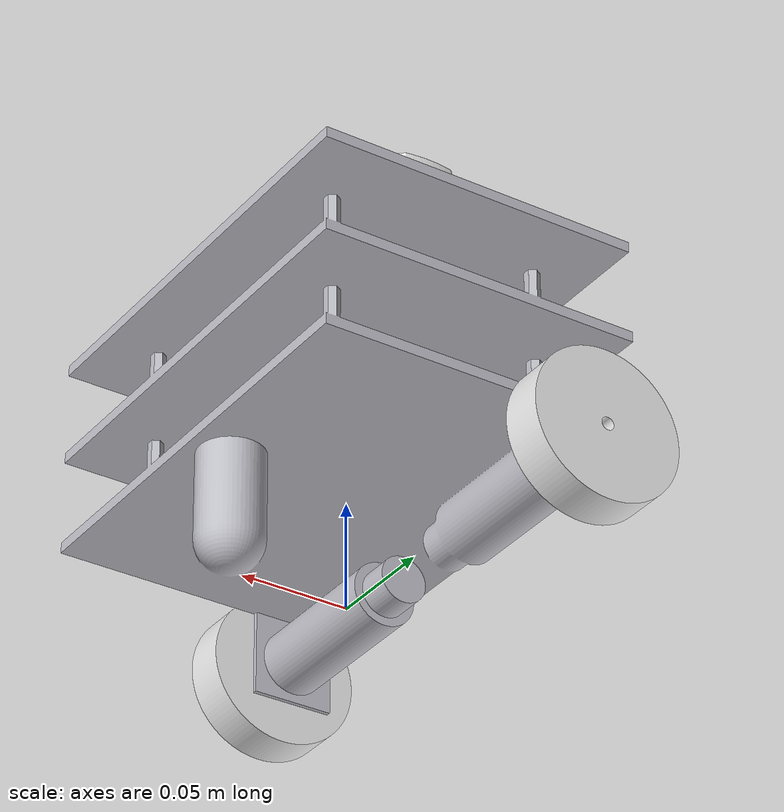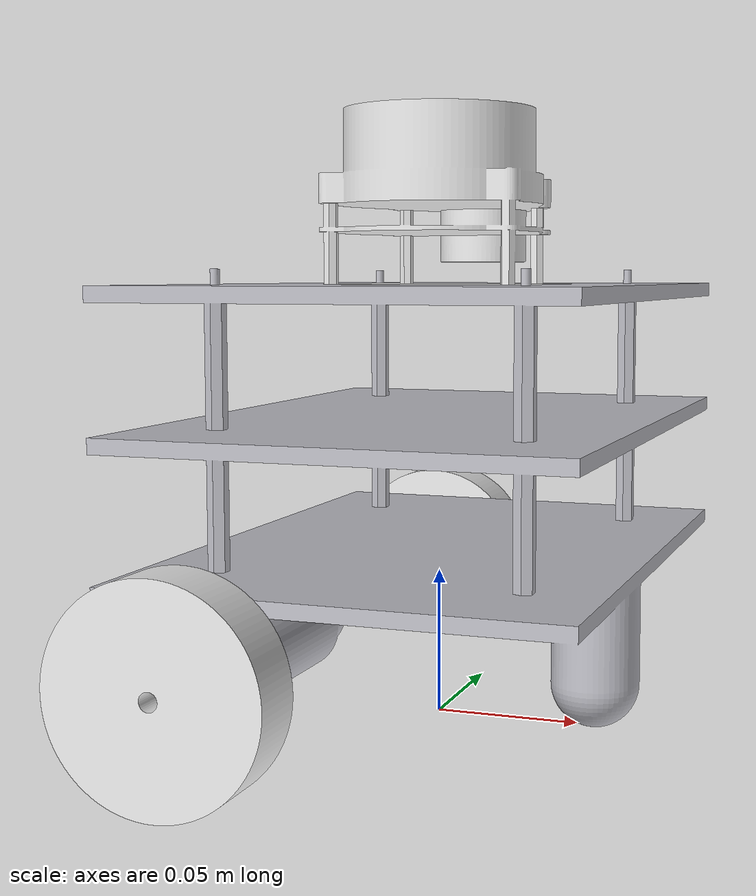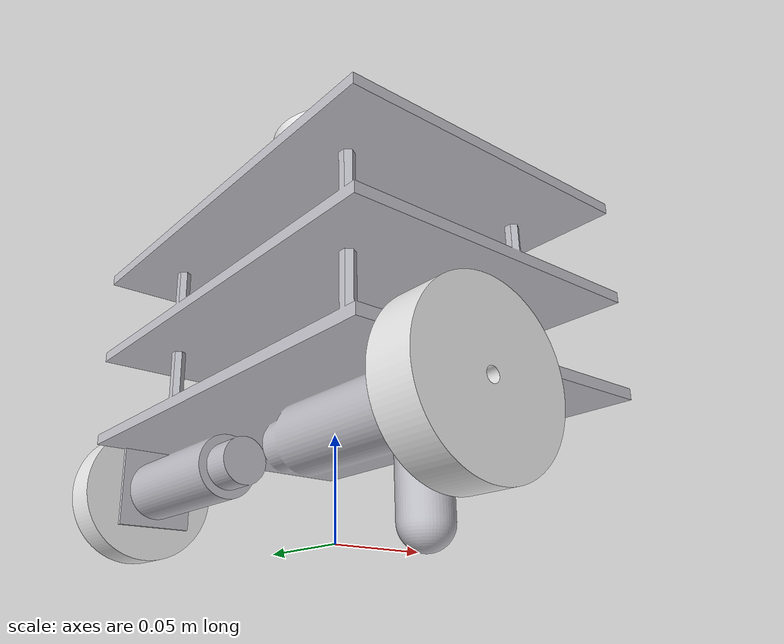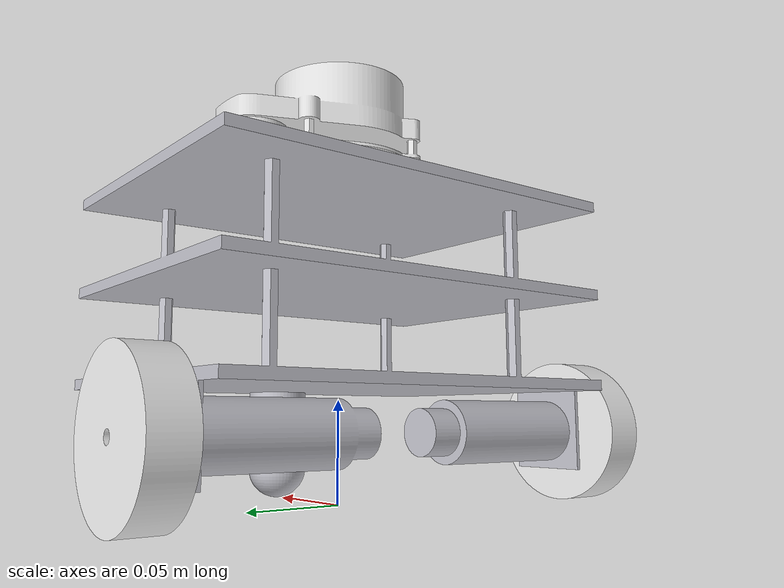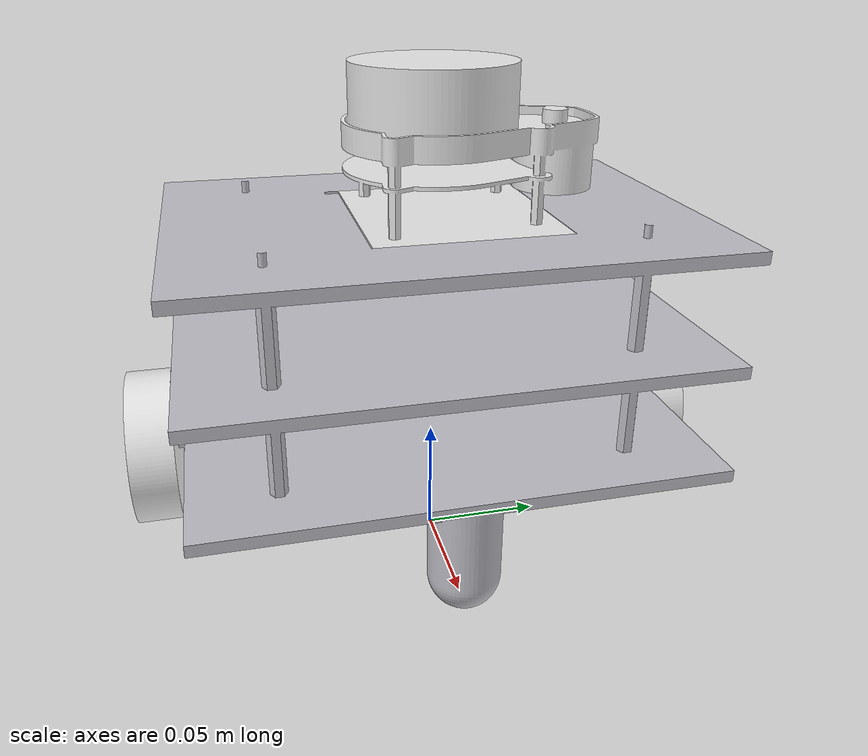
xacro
<?xml version="1.0" ?>
<robot name="autonav" xmlns:xacro="http://www.ros.org/wiki/xacro">

<xacro:include filename="$(find autonav_description)/urdf/materials.xacro" />
<xacro:include filename="$(find autonav_description)/urdf/autonav.trans" />
<xacro:include filename="$(find autonav_description)/urdf/autonav.gazebo" />
<link name="base_link">
  <inertial>
    <origin xyz="-0.01990026970047047 -0.0015934183682931621 0.06326698419199289" rpy="0 0 0"/>
    <mass value="1.502681972626612"/>
    <inertia ixx="0.00875" iyy="0.004671" izz="0.008385" ixy="-4e-06" iyz="6e-06" ixz="-0.00088"/>
  </inertial>
  <visual>
    <origin xyz="0 0 0" rpy="0 0 0"/>
    <geometry>
      <mesh filename="package://autonav_description/meshes/base_link.stl" scale="0.001 0.001 0.001"/>
    </geometry>
    <material name="iron_cast"/>
  </visual>
  <collision>
    <origin xyz="0 0 0" rpy="0 0 0"/>
    <geometry>
      <mesh filename="package://autonav_description/meshes/base_link.stl" scale="0.001 0.001 0.001"/>
    </geometry>
  </collision>
</link>

<link name="rwheel_v1_1">
  <inertial>
    <origin xyz="-4.5057989165459e-07 -0.010000144695498703 -3.808221187284744e-07" rpy="0 0 0"/>
    <mass value="0.08557195733554016"/>
    <inertia ixx="2.9e-05" iyy="5.3e-05" izz="2.9e-05" ixy="-0.0" iyz="-0.0" ixz="0.0"/>
  </inertial>
  <visual>
    <origin xyz="0.039922 0.112112 -0.034999" rpy="0 0 0"/>
    <geometry>
      <mesh filename="package://autonav_description/meshes/rwheel_v1_1.stl" scale="0.001 0.001 0.001"/>
    </geometry>
    <material name="nylon_66_white"/>
  </visual>
  <collision>
    <origin xyz="0.039922 0.112112 -0.034999" rpy="0 0 0"/>
    <geometry>
      <mesh filename="package://autonav_description/meshes/rwheel_v1_1.stl" scale="0.001 0.001 0.001"/>
    </geometry>
  </collision>
</link>

<link name="lwheel_v1_1">
  <inertial>
    <origin xyz="-4.505798912313175e-07 0.009999855304501926 -3.808221200884976e-07" rpy="0 0 0"/>
    <mass value="0.08557195733554016"/>
    <inertia ixx="2.9e-05" iyy="5.3e-05" izz="2.9e-05" ixy="-0.0" iyz="0.0" ixz="0.0"/>
  </inertial>
  <visual>
    <origin xyz="0.039922 -0.108888 -0.034999" rpy="0 0 0"/>
    <geometry>
      <mesh filename="package://autonav_description/meshes/lwheel_v1_1.stl" scale="0.001 0.001 0.001"/>
    </geometry>
    <material name="nylon_66_white"/>
  </visual>
  <collision>
    <origin xyz="0.039922 -0.108888 -0.034999" rpy="0 0 0"/>
    <geometry>
      <mesh filename="package://autonav_description/meshes/lwheel_v1_1.stl" scale="0.001 0.001 0.001"/>
    </geometry>
  </collision>
</link>

<link name="ydlidar_x4_v2_1">
  <inertial>
    <origin xyz="4.659333779554348e-11 0.004720065458063468 0.037124378121149104" rpy="0 0 0"/>
    <mass value="0.16219033734231034"/>
    <inertia ixx="0.000129" iyy="7.9e-05" izz="0.00014" ixy="0.0" iyz="2e-05" ixz="0.0"/>
  </inertial>
  <visual>
    <origin xyz="-0.0 -0.00325 -0.196249" rpy="0 0 0"/>
    <geometry>
      <mesh filename="package://autonav_description/meshes/ydlidar_x4_v2_1.stl" scale="0.001 0.001 0.001"/>
    </geometry>
    <material name="abs_white"/>
  </visual>
  <collision>
    <origin xyz="-0.0 -0.00325 -0.196249" rpy="0 0 0"/>
    <geometry>
      <mesh filename="package://autonav_description/meshes/ydlidar_x4_v2_1.stl" scale="0.001 0.001 0.001"/>
    </geometry>
  </collision>
</link>

<joint name="Revolute 2" type="continuous">
  <origin xyz="-0.039922 -0.112112 0.034999" rpy="0 0 0"/>
  <parent link="base_link"/>
  <child link="rwheel_v1_1"/>
  <axis xyz="-0.0 1.0 -0.0"/>
</joint>

<joint name="Revolute 3" type="continuous">
  <origin xyz="-0.039922 0.108888 0.034999" rpy="0 0 0"/>
  <parent link="base_link"/>
  <child link="lwheel_v1_1"/>
  <axis xyz="-0.0 1.0 0.0"/>
</joint>

<joint name="Rigid 8" type="fixed">
  <origin xyz="0.0 0.00325 0.196249" rpy="0 0 0"/>
  <parent link="base_link"/>
  <child link="ydlidar_x4_v2_1"/>
</joint>

</robot>

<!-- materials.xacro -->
<robot name="autonav" xmlns:xacro="http://www.ros.org/wiki/xacro" >

<material name="silver_default">
  <color rgba="0.700 0.700 0.700 1.000"/>
</material>
<material name="rubber_soft">
  <color rgba="0.15294117647058825 0.15294117647058825 0.15294117647058825 1.0"/>
</material>
<material name="steel_satin">
  <color rgba="0.6274509803921569 0.6274509803921569 0.6274509803921569 1.0"/>
</material>
<material name="plastic_matte_red">
  <color rgba="0.7686274509803922 0.20784313725490197 0.15294117647058825 1.0"/>
</material>
<material name="paint_enamel_glossy_grey">
  <color rgba="0.7019607843137254 0.7019607843137254 0.7019607843137254 1.0"/>
</material>
<material name="powder_coat_grey">
  <color rgba="0.7019607843137254 0.7019607843137254 0.7019607843137254 1.0"/>
</material>
<material name="blue">
  <color rgba="0.1 0.1 0.7 1.0"/>
</material>
<material name="black">
  <color rgba="0.4 0.35 0.38 1.0"/>
</material>

</robot>

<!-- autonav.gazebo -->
<robot name="autonav" xmlns:xacro="http://www.ros.org/wiki/xacro" >

<xacro:property name="body_color" value="Gazebo/Silver" />

<gazebo>
  <plugin name="control" filename="libgazebo_ros_control.so"/>
</gazebo>
<gazebo reference="base_link">
  <material>${body_color}</material>
  <mu1>0.001</mu1>
  <mu2>0.001</mu2>
  <selfCollide>true</selfCollide>
  <gravity>true</gravity>
</gazebo>

<gazebo reference="rwheel_v1_1">
  <material>${body_color}</material>
  <mu1>1000</mu1>
  <mu2>1000</mu2>
  <selfCollide>true</selfCollide>
</gazebo>

<gazebo reference="lwheel_v1_1">
  <material>${body_color}</material>
  <mu1>1000</mu1>
  <mu2>1000</mu2>
  <selfCollide>true</selfCollide>
</gazebo>

<gazebo reference="ydlidar_x4_v2_1">
  <material>${body_color}</material>
  <mu1>0.2</mu1>
  <mu2>0.2</mu2>
  <selfCollide>true</selfCollide>
</gazebo>

<gazebo>
  <plugin name="differential_drive_controller" filename="libgazebo_ros_diff_drive.so">

    <!-- Plugin update rate in Hz -->
    <updateRate>50</updateRate>

    <!-- Name of left joint, defaults to `left_joint` -->
    <leftJoint>Revolute 3</leftJoint>

    <!-- Name of right joint, defaults to `right_joint` -->
    <rightJoint>Revolute 2</rightJoint>

    <!-- Wheel acceleration, in rad/s^2, defaults to 0.0 rad/s^2 -->
    <wheelAcceleration>1.0</wheelAcceleration>

    <!-- Maximum torque which the wheels can produce, in Nm, defaults to 5 Nm -->
    <wheelTorque>20</wheelTorque>

    <!-- Topic to receive geometry_msgs/Twist message commands, defaults to `cmd_vel` -->
    <commandTopic>cmd_vel</commandTopic>

    <!-- Topic to publish nav_msgs/Odometry messages, defaults to `odom` -->
    <odometryTopic>odom</odometryTopic>

    <!-- Odometry frame, defaults to `odom` -->
    <odometryFrame>odom</odometryFrame>

    <!-- Robot frame to calculate odometry from, defaults to `base_footprint` -->
    <robotBaseFrame>base_link</robotBaseFrame>

    <!-- Odometry source, 0 for ENCODER, 1 for WORLD, defaults to WORLD -->
    <odometrySource>1</odometrySource>

    <!-- Set to true to publish transforms for the wheel links, defaults to false -->
    <publishWheelTF>false</publishWheelTF>

    <!-- Set to true to publish transforms for the odometry, defaults to true -->
    <publishOdom>true</publishOdom>

    <!-- Set to true to publish sensor_msgs/JointState on /joint_states for the wheel joints, defaults to false -->
    <publishWheelJointState>false</publishWheelJointState>

    <!-- Set to true to swap right and left wheels, defaults to true -->
    <legacyMode>true</legacyMode>
  </plugin>
</gazebo>

  <!-- hokuyo -->
  <gazebo reference="ydlidar_x4_v2_1">
    <sensor type="ray" name="head_hokuyo_sensor">
      <pose>0 0 0 0 0 0</pose>
      <visualize>false</visualize>
      <update_rate>40</update_rate>
      <ray>
        <scan>
          <horizontal>
            <samples>720</samples>
            <resolution>1</resolution>
            <min_angle>-3.14159</min_angle>
            <max_angle>3.14159</max_angle>
          </horizontal>
        </scan>
        <range>
          <min>0.10</min>
          <max>30.0</max>
          <resolution>0.01</resolution>
        </range>
        <noise>
          <type>gaussian</type>
          <mean>0.0</mean>
          <stddev>0.01</stddev>
        </noise>
      </ray>
      <plugin name="gazebo_ros_head_hokuyo_controller" filename="libgazebo_ros_laser.so">
        <topicName>/scan</topicName>
        <frameName>ydlidar_x4_v2_1</frameName>
      </plugin>
    </sensor>
  </gazebo>

</robot>
